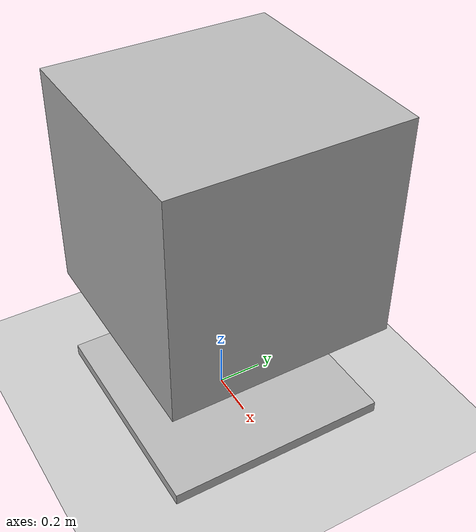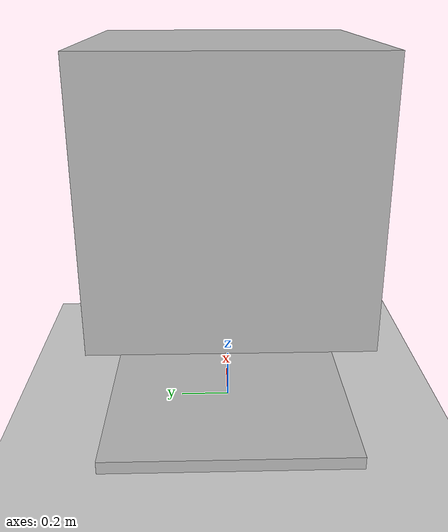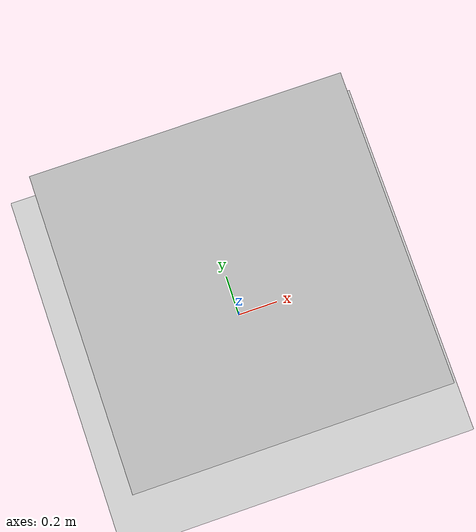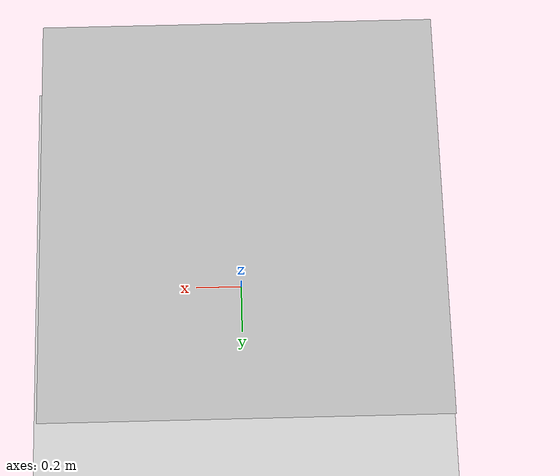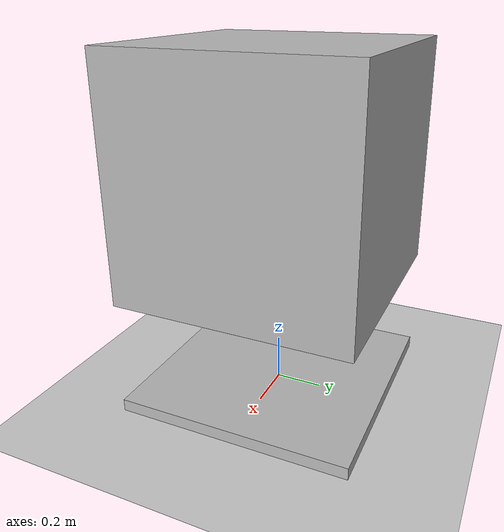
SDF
<?xml version="1.0" ?>
<sdf version="1.4">
	<!-- We use a custom world for the rrbot so that the camera angle is launched correctly -->

	<world name="default">
		<include>
			<uri>model://ground_plane</uri>
		</include>

		<!-- Global light source -->
		<include>
			<uri>model://sun</uri>
		</include>

		<model name="box">
			<link name="body">
				<pose>0 0 1 0 0 0</pose>
				<visual name="body_vis">
					<geometry>
						<box>
							<size>1 1 1</size>
						</box>
					</geometry>
				</visual>
				<collision name="body_collision">
					<geometry>
						<box>
							<size>1 1 1</size>
						</box>
					</geometry>
				</collision>
			</link>

			<link name="foot">
				<visual name="foot_vis">
					<geometry>
						<box>
							<size>1 1 0.1</size>
						</box>
					</geometry>
				</visual>
				<collision name="foot_collision">
					<geometry>
						<box>
							<size>1 1 0.1</size>
						</box>
					</geometry>
				</collision>
			</link>

			<joint name="spring_a_joint" type="prismatic">
				<pose>0.0 0.0 0.0 0.0 0.0 0.0</pose>
				<child>foot</child>
				<parent>body</parent>
				<axis>
					<limit>
						<lower>0</lower>
						<upper>0</upper>
					</limit>
					<xyz>0.0 0.0 1.0</xyz>
				</axis>
				<physics>
					<ode>
						<limit>
							<cfm>0.1</cfm>
							<erp>0.1</erp>
						</limit>
					</ode>
				</physics>
			</joint>

		</model>

	</world>
</sdf>
